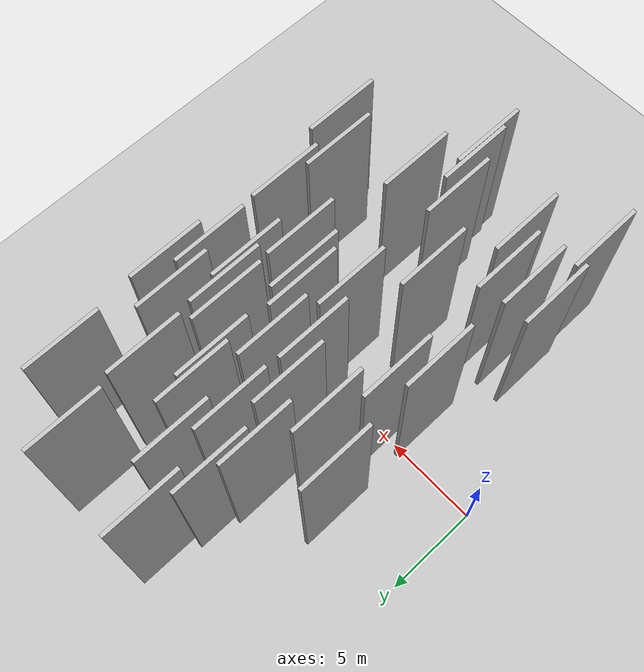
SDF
<?xml version="1.0" encoding="utf-8"?>

<sdf version="1.6">

   <world name="default">

      <gui fullscreen="0">

         <camera name="user_camera">

            <pose>-15 0 4.57585 0 0 0</pose>

            <view_controller>orbit</view_controller>

         </camera>

      </gui>

      <scene>

         <sky>

           <clouds>

             <speed>12</speed>

           </clouds>

         </sky>

         <ambient>0.4 0.4 0.4 1</ambient>

         <background>0.7 0.7 0.7 1</background>

         <shadows>1</shadows>

      </scene>

      <gravity>0 0 -9.8066</gravity>

      <magnetic_field>6e-06 2.3e-05 -4.2e-05</magnetic_field>

      <physics default="0" name="default_physics" type="ode">

         <ode>

            <solver>

               <type>quick</type>

               <iters>10</iters>

               <sor>1.0</sor>

               <use_dynamic_moi_rescaling>0</use_dynamic_moi_rescaling>

            </solver>

            <constraints>

               <cfm>0</cfm>

               <erp>0.2</erp>

               <contact_max_correcting_vel>100</contact_max_correcting_vel>

               <contact_surface_layer>0.001</contact_surface_layer>

            </constraints>

         </ode>

         <max_step_size>0.004</max_step_size>

         <real_time_factor>1</real_time_factor>

         <real_time_update_rate>250</real_time_update_rate>

      </physics>

      <light name="sun" type="directional">

         <cast_shadows>1</cast_shadows>

         <pose>0 0 10 0 0 0</pose>

         <diffuse>0.8 0.8 0.8 1</diffuse>

         <specular>0.2 0.2 0.2 1</specular>

         <attenuation>

            <range>1000</range>

            <constant>0.9</constant>

            <linear>0.01</linear>

            <quadratic>0.001</quadratic>

         </attenuation>

         <direction>-0.5 0.1 -0.9</direction>

      </light>

      <include>

         <name>ground_plane_1</name>

         <uri>model://HANNAS_ground_plane</uri>

         <pose>0 0 0  0 0 0</pose>

      </include>

      <include>

         <name>ground_plane_2</name>

         <uri>model://HANNAS_ground_plane</uri>

         <pose>100 0 0  0 0 0</pose>

      </include>

      <model name="HANNAS_wall_1">

         <static>1</static>

         <pose frame="">3.3832 -10.8072 0.0 0.000000 0.000000 1.570796</pose>

         <link name="link">

            <pose frame="">0 0 5.00 0 0 0</pose>

            <collision name="collision">

               <geometry>

                  <box>

                     <size>4.00 0.2 10.00</size>

                  </box>

               </geometry>

               <max_contacts>10</max_contacts>

               <surface>

                  <contact>

                     <ode/>

                  </contact>

                  <bounce/>

                  <friction>

                     <torsional>

                        <ode/>

                     </torsional>

                     <ode/>

                  </friction>

               </surface>

            </collision>

            <visual name="visual">

               <cast_shadows>0</cast_shadows>

               <geometry>

                  <box>

                     <size>4.00 0.2 10.00</size>

                  </box>

               </geometry>

               <material>

                  <script>

                     <uri>model://HANNAS_wall/materials/scripts</uri>

                     <uri>model://HANNAS_wall/materials/textures</uri>

                     <name>vrc/HANNAS_wall</name>

                  </script>

               </material>

            </visual>

            <self_collide>0</self_collide>

            <enable_wind>0</enable_wind>

            <kinematic>0</kinematic>

         </link>

      </model>

      <model name="HANNAS_wall_2">

         <static>1</static>

         <pose frame="">6.3397 -8.9448 0.0 0.000000 0.000000 1.570796</pose>

         <link name="link">

            <pose frame="">0 0 5.00 0 0 0</pose>

            <collision name="collision">

               <geometry>

                  <box>

                     <size>4.00 0.2 10.00</size>

                  </box>

               </geometry>

               <max_contacts>10</max_contacts>

               <surface>

                  <contact>

                     <ode/>

                  </contact>

                  <bounce/>

                  <friction>

                     <torsional>

                        <ode/>

                     </torsional>

                     <ode/>

                  </friction>

               </surface>

            </collision>

            <visual name="visual">

               <cast_shadows>0</cast_shadows>

               <geometry>

                  <box>

                     <size>4.00 0.2 10.00</size>

                  </box>

               </geometry>

               <material>

                  <script>

                     <uri>model://HANNAS_wall/materials/scripts</uri>

                     <uri>model://HANNAS_wall/materials/textures</uri>

                     <name>vrc/HANNAS_wall</name>

                  </script>

               </material>

            </visual>

            <self_collide>0</self_collide>

            <enable_wind>0</enable_wind>

            <kinematic>0</kinematic>

         </link>

      </model>

      <model name="HANNAS_wall_3">

         <static>1</static>

         <pose frame="">11.8246 -0.5661 0.0 0.000000 0.000000 1.570796</pose>

         <link name="link">

            <pose frame="">0 0 5.00 0 0 0</pose>

            <collision name="collision">

               <geometry>

                  <box>

                     <size>4.00 0.2 10.00</size>

                  </box>

               </geometry>

               <max_contacts>10</max_contacts>

               <surface>

                  <contact>

                     <ode/>

                  </contact>

                  <bounce/>

                  <friction>

                     <torsional>

                        <ode/>

                     </torsional>

                     <ode/>

                  </friction>

               </surface>

            </collision>

            <visual name="visual">

               <cast_shadows>0</cast_shadows>

               <geometry>

                  <box>

                     <size>4.00 0.2 10.00</size>

                  </box>

               </geometry>

               <material>

                  <script>

                     <uri>model://HANNAS_wall/materials/scripts</uri>

                     <uri>model://HANNAS_wall/materials/textures</uri>

                     <name>vrc/HANNAS_wall</name>

                  </script>

               </material>

            </visual>

            <self_collide>0</self_collide>

            <enable_wind>0</enable_wind>

            <kinematic>0</kinematic>

         </link>

      </model>

      <model name="HANNAS_wall_4">

         <static>1</static>

         <pose frame="">4.5400 -1.5496 0.0 0.000000 0.000000 1.570796</pose>

         <link name="link">

            <pose frame="">0 0 5.00 0 0 0</pose>

            <collision name="collision">

               <geometry>

                  <box>

                     <size>4.00 0.2 10.00</size>

                  </box>

               </geometry>

               <max_contacts>10</max_contacts>

               <surface>

                  <contact>

                     <ode/>

                  </contact>

                  <bounce/>

                  <friction>

                     <torsional>

                        <ode/>

                     </torsional>

                     <ode/>

                  </friction>

               </surface>

            </collision>

            <visual name="visual">

               <cast_shadows>0</cast_shadows>

               <geometry>

                  <box>

                     <size>4.00 0.2 10.00</size>

                  </box>

               </geometry>

               <material>

                  <script>

                     <uri>model://HANNAS_wall/materials/scripts</uri>

                     <uri>model://HANNAS_wall/materials/textures</uri>

                     <name>vrc/HANNAS_wall</name>

                  </script>

               </material>

            </visual>

            <self_collide>0</self_collide>

            <enable_wind>0</enable_wind>

            <kinematic>0</kinematic>

         </link>

      </model>

      <model name="HANNAS_wall_5">

         <static>1</static>

         <pose frame="">15.6263 1.5800 0.0 0.000000 0.000000 1.570796</pose>

         <link name="link">

            <pose frame="">0 0 5.00 0 0 0</pose>

            <collision name="collision">

               <geometry>

                  <box>

                     <size>4.00 0.2 10.00</size>

                  </box>

               </geometry>

               <max_contacts>10</max_contacts>

               <surface>

                  <contact>

                     <ode/>

                  </contact>

                  <bounce/>

                  <friction>

                     <torsional>

                        <ode/>

                     </torsional>

                     <ode/>

                  </friction>

               </surface>

            </collision>

            <visual name="visual">

               <cast_shadows>0</cast_shadows>

               <geometry>

                  <box>

                     <size>4.00 0.2 10.00</size>

                  </box>

               </geometry>

               <material>

                  <script>

                     <uri>model://HANNAS_wall/materials/scripts</uri>

                     <uri>model://HANNAS_wall/materials/textures</uri>

                     <name>vrc/HANNAS_wall</name>

                  </script>

               </material>

            </visual>

            <self_collide>0</self_collide>

            <enable_wind>0</enable_wind>

            <kinematic>0</kinematic>

         </link>

      </model>

      <model name="HANNAS_wall_6">

         <static>1</static>

         <pose frame="">13.2290 11.5430 0.0 0.000000 0.000000 1.570796</pose>

         <link name="link">

            <pose frame="">0 0 5.00 0 0 0</pose>

            <collision name="collision">

               <geometry>

                  <box>

                     <size>4.00 0.2 10.00</size>

                  </box>

               </geometry>

               <max_contacts>10</max_contacts>

               <surface>

                  <contact>

                     <ode/>

                  </contact>

                  <bounce/>

                  <friction>

                     <torsional>

                        <ode/>

                     </torsional>

                     <ode/>

                  </friction>

               </surface>

            </collision>

            <visual name="visual">

               <cast_shadows>0</cast_shadows>

               <geometry>

                  <box>

                     <size>4.00 0.2 10.00</size>

                  </box>

               </geometry>

               <material>

                  <script>

                     <uri>model://HANNAS_wall/materials/scripts</uri>

                     <uri>model://HANNAS_wall/materials/textures</uri>

                     <name>vrc/HANNAS_wall</name>

                  </script>

               </material>

            </visual>

            <self_collide>0</self_collide>

            <enable_wind>0</enable_wind>

            <kinematic>0</kinematic>

         </link>

      </model>

      <model name="HANNAS_wall_7">

         <static>1</static>

         <pose frame="">11.2349 0.0759 0.0 0.000000 0.000000 1.570796</pose>

         <link name="link">

            <pose frame="">0 0 5.00 0 0 0</pose>

            <collision name="collision">

               <geometry>

                  <box>

                     <size>4.00 0.2 10.00</size>

                  </box>

               </geometry>

               <max_contacts>10</max_contacts>

               <surface>

                  <contact>

                     <ode/>

                  </contact>

                  <bounce/>

                  <friction>

                     <torsional>

                        <ode/>

                     </torsional>

                     <ode/>

                  </friction>

               </surface>

            </collision>

            <visual name="visual">

               <cast_shadows>0</cast_shadows>

               <geometry>

                  <box>

                     <size>4.00 0.2 10.00</size>

                  </box>

               </geometry>

               <material>

                  <script>

                     <uri>model://HANNAS_wall/materials/scripts</uri>

                     <uri>model://HANNAS_wall/materials/textures</uri>

                     <name>vrc/HANNAS_wall</name>

                  </script>

               </material>

            </visual>

            <self_collide>0</self_collide>

            <enable_wind>0</enable_wind>

            <kinematic>0</kinematic>

         </link>

      </model>

      <model name="HANNAS_wall_8">

         <static>1</static>

         <pose frame="">10.4423 2.5509 0.0 0.000000 0.000000 1.570796</pose>

         <link name="link">

            <pose frame="">0 0 5.00 0 0 0</pose>

            <collision name="collision">

               <geometry>

                  <box>

                     <size>4.00 0.2 10.00</size>

                  </box>

               </geometry>

               <max_contacts>10</max_contacts>

               <surface>

                  <contact>

                     <ode/>

                  </contact>

                  <bounce/>

                  <friction>

                     <torsional>

                        <ode/>

                     </torsional>

                     <ode/>

                  </friction>

               </surface>

            </collision>

            <visual name="visual">

               <cast_shadows>0</cast_shadows>

               <geometry>

                  <box>

                     <size>4.00 0.2 10.00</size>

                  </box>

               </geometry>

               <material>

                  <script>

                     <uri>model://HANNAS_wall/materials/scripts</uri>

                     <uri>model://HANNAS_wall/materials/textures</uri>

                     <name>vrc/HANNAS_wall</name>

                  </script>

               </material>

            </visual>

            <self_collide>0</self_collide>

            <enable_wind>0</enable_wind>

            <kinematic>0</kinematic>

         </link>

      </model>

      <model name="HANNAS_wall_9">

         <static>1</static>

         <pose frame="">13.7004 2.4150 0.0 0.000000 0.000000 1.570796</pose>

         <link name="link">

            <pose frame="">0 0 5.00 0 0 0</pose>

            <collision name="collision">

               <geometry>

                  <box>

                     <size>4.00 0.2 10.00</size>

                  </box>

               </geometry>

               <max_contacts>10</max_contacts>

               <surface>

                  <contact>

                     <ode/>

                  </contact>

                  <bounce/>

                  <friction>

                     <torsional>

                        <ode/>

                     </torsional>

                     <ode/>

                  </friction>

               </surface>

            </collision>

            <visual name="visual">

               <cast_shadows>0</cast_shadows>

               <geometry>

                  <box>

                     <size>4.00 0.2 10.00</size>

                  </box>

               </geometry>

               <material>

                  <script>

                     <uri>model://HANNAS_wall/materials/scripts</uri>

                     <uri>model://HANNAS_wall/materials/textures</uri>

                     <name>vrc/HANNAS_wall</name>

                  </script>

               </material>

            </visual>

            <self_collide>0</self_collide>

            <enable_wind>0</enable_wind>

            <kinematic>0</kinematic>

         </link>

      </model>

      <model name="HANNAS_wall_10">

         <static>1</static>

         <pose frame="">13.1162 -1.5548 0.0 0.000000 0.000000 1.570796</pose>

         <link name="link">

            <pose frame="">0 0 5.00 0 0 0</pose>

            <collision name="collision">

               <geometry>

                  <box>

                     <size>4.00 0.2 10.00</size>

                  </box>

               </geometry>

               <max_contacts>10</max_contacts>

               <surface>

                  <contact>

                     <ode/>

                  </contact>

                  <bounce/>

                  <friction>

                     <torsional>

                        <ode/>

                     </torsional>

                     <ode/>

                  </friction>

               </surface>

            </collision>

            <visual name="visual">

               <cast_shadows>0</cast_shadows>

               <geometry>

                  <box>

                     <size>4.00 0.2 10.00</size>

                  </box>

               </geometry>

               <material>

                  <script>

                     <uri>model://HANNAS_wall/materials/scripts</uri>

                     <uri>model://HANNAS_wall/materials/textures</uri>

                     <name>vrc/HANNAS_wall</name>

                  </script>

               </material>

            </visual>

            <self_collide>0</self_collide>

            <enable_wind>0</enable_wind>

            <kinematic>0</kinematic>

         </link>

      </model>

      <model name="HANNAS_wall_11">

         <static>1</static>

         <pose frame="">12.0513 -7.7593 0.0 0.000000 0.000000 1.570796</pose>

         <link name="link">

            <pose frame="">0 0 5.00 0 0 0</pose>

            <collision name="collision">

               <geometry>

                  <box>

                     <size>4.00 0.2 10.00</size>

                  </box>

               </geometry>

               <max_contacts>10</max_contacts>

               <surface>

                  <contact>

                     <ode/>

                  </contact>

                  <bounce/>

                  <friction>

                     <torsional>

                        <ode/>

                     </torsional>

                     <ode/>

                  </friction>

               </surface>

            </collision>

            <visual name="visual">

               <cast_shadows>0</cast_shadows>

               <geometry>

                  <box>

                     <size>4.00 0.2 10.00</size>

                  </box>

               </geometry>

               <material>

                  <script>

                     <uri>model://HANNAS_wall/materials/scripts</uri>

                     <uri>model://HANNAS_wall/materials/textures</uri>

                     <name>vrc/HANNAS_wall</name>

                  </script>

               </material>

            </visual>

            <self_collide>0</self_collide>

            <enable_wind>0</enable_wind>

            <kinematic>0</kinematic>

         </link>

      </model>

      <model name="HANNAS_wall_12">

         <static>1</static>

         <pose frame="">15.2707 -5.9594 0.0 0.000000 0.000000 1.570796</pose>

         <link name="link">

            <pose frame="">0 0 5.00 0 0 0</pose>

            <collision name="collision">

               <geometry>

                  <box>

                     <size>4.00 0.2 10.00</size>

                  </box>

               </geometry>

               <max_contacts>10</max_contacts>

               <surface>

                  <contact>

                     <ode/>

                  </contact>

                  <bounce/>

                  <friction>

                     <torsional>

                        <ode/>

                     </torsional>

                     <ode/>

                  </friction>

               </surface>

            </collision>

            <visual name="visual">

               <cast_shadows>0</cast_shadows>

               <geometry>

                  <box>

                     <size>4.00 0.2 10.00</size>

                  </box>

               </geometry>

               <material>

                  <script>

                     <uri>model://HANNAS_wall/materials/scripts</uri>

                     <uri>model://HANNAS_wall/materials/textures</uri>

                     <name>vrc/HANNAS_wall</name>

                  </script>

               </material>

            </visual>

            <self_collide>0</self_collide>

            <enable_wind>0</enable_wind>

            <kinematic>0</kinematic>

         </link>

      </model>

      <model name="HANNAS_wall_13">

         <static>1</static>

         <pose frame="">7.9908 -4.7197 0.0 0.000000 0.000000 1.570796</pose>

         <link name="link">

            <pose frame="">0 0 5.00 0 0 0</pose>

            <collision name="collision">

               <geometry>

                  <box>

                     <size>4.00 0.2 10.00</size>

                  </box>

               </geometry>

               <max_contacts>10</max_contacts>

               <surface>

                  <contact>

                     <ode/>

                  </contact>

                  <bounce/>

                  <friction>

                     <torsional>

                        <ode/>

                     </torsional>

                     <ode/>

                  </friction>

               </surface>

            </collision>

            <visual name="visual">

               <cast_shadows>0</cast_shadows>

               <geometry>

                  <box>

                     <size>4.00 0.2 10.00</size>

                  </box>

               </geometry>

               <material>

                  <script>

                     <uri>model://HANNAS_wall/materials/scripts</uri>

                     <uri>model://HANNAS_wall/materials/textures</uri>

                     <name>vrc/HANNAS_wall</name>

                  </script>

               </material>

            </visual>

            <self_collide>0</self_collide>

            <enable_wind>0</enable_wind>

            <kinematic>0</kinematic>

         </link>

      </model>

      <model name="HANNAS_wall_14">

         <static>1</static>

         <pose frame="">16.5486 -7.3850 0.0 0.000000 0.000000 1.570796</pose>

         <link name="link">

            <pose frame="">0 0 5.00 0 0 0</pose>

            <collision name="collision">

               <geometry>

                  <box>

                     <size>4.00 0.2 10.00</size>

                  </box>

               </geometry>

               <max_contacts>10</max_contacts>

               <surface>

                  <contact>

                     <ode/>

                  </contact>

                  <bounce/>

                  <friction>

                     <torsional>

                        <ode/>

                     </torsional>

                     <ode/>

                  </friction>

               </surface>

            </collision>

            <visual name="visual">

               <cast_shadows>0</cast_shadows>

               <geometry>

                  <box>

                     <size>4.00 0.2 10.00</size>

                  </box>

               </geometry>

               <material>

                  <script>

                     <uri>model://HANNAS_wall/materials/scripts</uri>

                     <uri>model://HANNAS_wall/materials/textures</uri>

                     <name>vrc/HANNAS_wall</name>

                  </script>

               </material>

            </visual>

            <self_collide>0</self_collide>

            <enable_wind>0</enable_wind>

            <kinematic>0</kinematic>

         </link>

      </model>

      <model name="HANNAS_wall_15">

         <static>1</static>

         <pose frame="">4.3701 4.6510 0.0 0.000000 0.000000 1.570796</pose>

         <link name="link">

            <pose frame="">0 0 5.00 0 0 0</pose>

            <collision name="collision">

               <geometry>

                  <box>

                     <size>4.00 0.2 10.00</size>

                  </box>

               </geometry>

               <max_contacts>10</max_contacts>

               <surface>

                  <contact>

                     <ode/>

                  </contact>

                  <bounce/>

                  <friction>

                     <torsional>

                        <ode/>

                     </torsional>

                     <ode/>

                  </friction>

               </surface>

            </collision>

            <visual name="visual">

               <cast_shadows>0</cast_shadows>

               <geometry>

                  <box>

                     <size>4.00 0.2 10.00</size>

                  </box>

               </geometry>

               <material>

                  <script>

                     <uri>model://HANNAS_wall/materials/scripts</uri>

                     <uri>model://HANNAS_wall/materials/textures</uri>

                     <name>vrc/HANNAS_wall</name>

                  </script>

               </material>

            </visual>

            <self_collide>0</self_collide>

            <enable_wind>0</enable_wind>

            <kinematic>0</kinematic>

         </link>

      </model>

      <model name="HANNAS_wall_16">

         <static>1</static>

         <pose frame="">4.3443 -7.2147 0.0 0.000000 0.000000 1.570796</pose>

         <link name="link">

            <pose frame="">0 0 5.00 0 0 0</pose>

            <collision name="collision">

               <geometry>

                  <box>

                     <size>4.00 0.2 10.00</size>

                  </box>

               </geometry>

               <max_contacts>10</max_contacts>

               <surface>

                  <contact>

                     <ode/>

                  </contact>

                  <bounce/>

                  <friction>

                     <torsional>

                        <ode/>

                     </torsional>

                     <ode/>

                  </friction>

               </surface>

            </collision>

            <visual name="visual">

               <cast_shadows>0</cast_shadows>

               <geometry>

                  <box>

                     <size>4.00 0.2 10.00</size>

                  </box>

               </geometry>

               <material>

                  <script>

                     <uri>model://HANNAS_wall/materials/scripts</uri>

                     <uri>model://HANNAS_wall/materials/textures</uri>

                     <name>vrc/HANNAS_wall</name>

                  </script>

               </material>

            </visual>

            <self_collide>0</self_collide>

            <enable_wind>0</enable_wind>

            <kinematic>0</kinematic>

         </link>

      </model>

      <model name="HANNAS_wall_17">

         <static>1</static>

         <pose frame="">11.4988 5.0331 0.0 0.000000 0.000000 1.570796</pose>

         <link name="link">

            <pose frame="">0 0 5.00 0 0 0</pose>

            <collision name="collision">

               <geometry>

                  <box>

                     <size>4.00 0.2 10.00</size>

                  </box>

               </geometry>

               <max_contacts>10</max_contacts>

               <surface>

                  <contact>

                     <ode/>

                  </contact>

                  <bounce/>

                  <friction>

                     <torsional>

                        <ode/>

                     </torsional>

                     <ode/>

                  </friction>

               </surface>

            </collision>

            <visual name="visual">

               <cast_shadows>0</cast_shadows>

               <geometry>

                  <box>

                     <size>4.00 0.2 10.00</size>

                  </box>

               </geometry>

               <material>

                  <script>

                     <uri>model://HANNAS_wall/materials/scripts</uri>

                     <uri>model://HANNAS_wall/materials/textures</uri>

                     <name>vrc/HANNAS_wall</name>

                  </script>

               </material>

            </visual>

            <self_collide>0</self_collide>

            <enable_wind>0</enable_wind>

            <kinematic>0</kinematic>

         </link>

      </model>

      <model name="HANNAS_wall_18">

         <static>1</static>

         <pose frame="">15.0743 4.2230 0.0 0.000000 0.000000 1.570796</pose>

         <link name="link">

            <pose frame="">0 0 5.00 0 0 0</pose>

            <collision name="collision">

               <geometry>

                  <box>

                     <size>4.00 0.2 10.00</size>

                  </box>

               </geometry>

               <max_contacts>10</max_contacts>

               <surface>

                  <contact>

                     <ode/>

                  </contact>

                  <bounce/>

                  <friction>

                     <torsional>

                        <ode/>

                     </torsional>

                     <ode/>

                  </friction>

               </surface>

            </collision>

            <visual name="visual">

               <cast_shadows>0</cast_shadows>

               <geometry>

                  <box>

                     <size>4.00 0.2 10.00</size>

                  </box>

               </geometry>

               <material>

                  <script>

                     <uri>model://HANNAS_wall/materials/scripts</uri>

                     <uri>model://HANNAS_wall/materials/textures</uri>

                     <name>vrc/HANNAS_wall</name>

                  </script>

               </material>

            </visual>

            <self_collide>0</self_collide>

            <enable_wind>0</enable_wind>

            <kinematic>0</kinematic>

         </link>

      </model>

      <model name="HANNAS_wall_19">

         <static>1</static>

         <pose frame="">13.9900 0.8796 0.0 0.000000 0.000000 1.570796</pose>

         <link name="link">

            <pose frame="">0 0 5.00 0 0 0</pose>

            <collision name="collision">

               <geometry>

                  <box>

                     <size>4.00 0.2 10.00</size>

                  </box>

               </geometry>

               <max_contacts>10</max_contacts>

               <surface>

                  <contact>

                     <ode/>

                  </contact>

                  <bounce/>

                  <friction>

                     <torsional>

                        <ode/>

                     </torsional>

                     <ode/>

                  </friction>

               </surface>

            </collision>

            <visual name="visual">

               <cast_shadows>0</cast_shadows>

               <geometry>

                  <box>

                     <size>4.00 0.2 10.00</size>

                  </box>

               </geometry>

               <material>

                  <script>

                     <uri>model://HANNAS_wall/materials/scripts</uri>

                     <uri>model://HANNAS_wall/materials/textures</uri>

                     <name>vrc/HANNAS_wall</name>

                  </script>

               </material>

            </visual>

            <self_collide>0</self_collide>

            <enable_wind>0</enable_wind>

            <kinematic>0</kinematic>

         </link>

      </model>

      <model name="HANNAS_wall_20">

         <static>1</static>

         <pose frame="">3.0623 -7.2333 0.0 0.000000 0.000000 1.570796</pose>

         <link name="link">

            <pose frame="">0 0 5.00 0 0 0</pose>

            <collision name="collision">

               <geometry>

                  <box>

                     <size>4.00 0.2 10.00</size>

                  </box>

               </geometry>

               <max_contacts>10</max_contacts>

               <surface>

                  <contact>

                     <ode/>

                  </contact>

                  <bounce/>

                  <friction>

                     <torsional>

                        <ode/>

                     </torsional>

                     <ode/>

                  </friction>

               </surface>

            </collision>

            <visual name="visual">

               <cast_shadows>0</cast_shadows>

               <geometry>

                  <box>

                     <size>4.00 0.2 10.00</size>

                  </box>

               </geometry>

               <material>

                  <script>

                     <uri>model://HANNAS_wall/materials/scripts</uri>

                     <uri>model://HANNAS_wall/materials/textures</uri>

                     <name>vrc/HANNAS_wall</name>

                  </script>

               </material>

            </visual>

            <self_collide>0</self_collide>

            <enable_wind>0</enable_wind>

            <kinematic>0</kinematic>

         </link>

      </model>

      <model name="HANNAS_wall_21">

         <static>1</static>

         <pose frame="">9.1421 1.3990 0.0 0.000000 0.000000 1.570796</pose>

         <link name="link">

            <pose frame="">0 0 5.00 0 0 0</pose>

            <collision name="collision">

               <geometry>

                  <box>

                     <size>4.00 0.2 10.00</size>

                  </box>

               </geometry>

               <max_contacts>10</max_contacts>

               <surface>

                  <contact>

                     <ode/>

                  </contact>

                  <bounce/>

                  <friction>

                     <torsional>

                        <ode/>

                     </torsional>

                     <ode/>

                  </friction>

               </surface>

            </collision>

            <visual name="visual">

               <cast_shadows>0</cast_shadows>

               <geometry>

                  <box>

                     <size>4.00 0.2 10.00</size>

                  </box>

               </geometry>

               <material>

                  <script>

                     <uri>model://HANNAS_wall/materials/scripts</uri>

                     <uri>model://HANNAS_wall/materials/textures</uri>

                     <name>vrc/HANNAS_wall</name>

                  </script>

               </material>

            </visual>

            <self_collide>0</self_collide>

            <enable_wind>0</enable_wind>

            <kinematic>0</kinematic>

         </link>

      </model>

      <model name="HANNAS_wall_22">

         <static>1</static>

         <pose frame="">8.3918 3.5246 0.0 0.000000 0.000000 1.570796</pose>

         <link name="link">

            <pose frame="">0 0 5.00 0 0 0</pose>

            <collision name="collision">

               <geometry>

                  <box>

                     <size>4.00 0.2 10.00</size>

                  </box>

               </geometry>

               <max_contacts>10</max_contacts>

               <surface>

                  <contact>

                     <ode/>

                  </contact>

                  <bounce/>

                  <friction>

                     <torsional>

                        <ode/>

                     </torsional>

                     <ode/>

                  </friction>

               </surface>

            </collision>

            <visual name="visual">

               <cast_shadows>0</cast_shadows>

               <geometry>

                  <box>

                     <size>4.00 0.2 10.00</size>

                  </box>

               </geometry>

               <material>

                  <script>

                     <uri>model://HANNAS_wall/materials/scripts</uri>

                     <uri>model://HANNAS_wall/materials/textures</uri>

                     <name>vrc/HANNAS_wall</name>

                  </script>

               </material>

            </visual>

            <self_collide>0</self_collide>

            <enable_wind>0</enable_wind>

            <kinematic>0</kinematic>

         </link>

      </model>

      <model name="HANNAS_wall_23">

         <static>1</static>

         <pose frame="">11.1994 6.3919 0.0 0.000000 0.000000 1.570796</pose>

         <link name="link">

            <pose frame="">0 0 5.00 0 0 0</pose>

            <collision name="collision">

               <geometry>

                  <box>

                     <size>4.00 0.2 10.00</size>

                  </box>

               </geometry>

               <max_contacts>10</max_contacts>

               <surface>

                  <contact>

                     <ode/>

                  </contact>

                  <bounce/>

                  <friction>

                     <torsional>

                        <ode/>

                     </torsional>

                     <ode/>

                  </friction>

               </surface>

            </collision>

            <visual name="visual">

               <cast_shadows>0</cast_shadows>

               <geometry>

                  <box>

                     <size>4.00 0.2 10.00</size>

                  </box>

               </geometry>

               <material>

                  <script>

                     <uri>model://HANNAS_wall/materials/scripts</uri>

                     <uri>model://HANNAS_wall/materials/textures</uri>

                     <name>vrc/HANNAS_wall</name>

                  </script>

               </material>

            </visual>

            <self_collide>0</self_collide>

            <enable_wind>0</enable_wind>

            <kinematic>0</kinematic>

         </link>

      </model>

      <model name="HANNAS_wall_24">

         <static>1</static>

         <pose frame="">5.4449 0.0748 0.0 0.000000 0.000000 1.570796</pose>

         <link name="link">

            <pose frame="">0 0 5.00 0 0 0</pose>

            <collision name="collision">

               <geometry>

                  <box>

                     <size>4.00 0.2 10.00</size>

                  </box>

               </geometry>

               <max_contacts>10</max_contacts>

               <surface>

                  <contact>

                     <ode/>

                  </contact>

                  <bounce/>

                  <friction>

                     <torsional>

                        <ode/>

                     </torsional>

                     <ode/>

                  </friction>

               </surface>

            </collision>

            <visual name="visual">

               <cast_shadows>0</cast_shadows>

               <geometry>

                  <box>

                     <size>4.00 0.2 10.00</size>

                  </box>

               </geometry>

               <material>

                  <script>

                     <uri>model://HANNAS_wall/materials/scripts</uri>

                     <uri>model://HANNAS_wall/materials/textures</uri>

                     <name>vrc/HANNAS_wall</name>

                  </script>

               </material>

            </visual>

            <self_collide>0</self_collide>

            <enable_wind>0</enable_wind>

            <kinematic>0</kinematic>

         </link>

      </model>

      <model name="HANNAS_wall_25">

         <static>1</static>

         <pose frame="">8.3574 11.4528 0.0 0.000000 0.000000 1.570796</pose>

         <link name="link">

            <pose frame="">0 0 5.00 0 0 0</pose>

            <collision name="collision">

               <geometry>

                  <box>

                     <size>4.00 0.2 10.00</size>

                  </box>

               </geometry>

               <max_contacts>10</max_contacts>

               <surface>

                  <contact>

                     <ode/>

                  </contact>

                  <bounce/>

                  <friction>

                     <torsional>

                        <ode/>

                     </torsional>

                     <ode/>

                  </friction>

               </surface>

            </collision>

            <visual name="visual">

               <cast_shadows>0</cast_shadows>

               <geometry>

                  <box>

                     <size>4.00 0.2 10.00</size>

                  </box>

               </geometry>

               <material>

                  <script>

                     <uri>model://HANNAS_wall/materials/scripts</uri>

                     <uri>model://HANNAS_wall/materials/textures</uri>

                     <name>vrc/HANNAS_wall</name>

                  </script>

               </material>

            </visual>

            <self_collide>0</self_collide>

            <enable_wind>0</enable_wind>

            <kinematic>0</kinematic>

         </link>

      </model>

      <model name="HANNAS_wall_26">

         <static>1</static>

         <pose frame="">16.1052 9.4257 0.0 0.000000 0.000000 1.570796</pose>

         <link name="link">

            <pose frame="">0 0 5.00 0 0 0</pose>

            <collision name="collision">

               <geometry>

                  <box>

                     <size>4.00 0.2 10.00</size>

                  </box>

               </geometry>

               <max_contacts>10</max_contacts>

               <surface>

                  <contact>

                     <ode/>

                  </contact>

                  <bounce/>

                  <friction>

                     <torsional>

                        <ode/>

                     </torsional>

                     <ode/>

                  </friction>

               </surface>

            </collision>

            <visual name="visual">

               <cast_shadows>0</cast_shadows>

               <geometry>

                  <box>

                     <size>4.00 0.2 10.00</size>

                  </box>

               </geometry>

               <material>

                  <script>

                     <uri>model://HANNAS_wall/materials/scripts</uri>

                     <uri>model://HANNAS_wall/materials/textures</uri>

                     <name>vrc/HANNAS_wall</name>

                  </script>

               </material>

            </visual>

            <self_collide>0</self_collide>

            <enable_wind>0</enable_wind>

            <kinematic>0</kinematic>

         </link>

      </model>

      <model name="HANNAS_wall_27">

         <static>1</static>

         <pose frame="">9.2094 6.0366 0.0 0.000000 0.000000 1.570796</pose>

         <link name="link">

            <pose frame="">0 0 5.00 0 0 0</pose>

            <collision name="collision">

               <geometry>

                  <box>

                     <size>4.00 0.2 10.00</size>

                  </box>

               </geometry>

               <max_contacts>10</max_contacts>

               <surface>

                  <contact>

                     <ode/>

                  </contact>

                  <bounce/>

                  <friction>

                     <torsional>

                        <ode/>

                     </torsional>

                     <ode/>

                  </friction>

               </surface>

            </collision>

            <visual name="visual">

               <cast_shadows>0</cast_shadows>

               <geometry>

                  <box>

                     <size>4.00 0.2 10.00</size>

                  </box>

               </geometry>

               <material>

                  <script>

                     <uri>model://HANNAS_wall/materials/scripts</uri>

                     <uri>model://HANNAS_wall/materials/textures</uri>

                     <name>vrc/HANNAS_wall</name>

                  </script>

               </material>

            </visual>

            <self_collide>0</self_collide>

            <enable_wind>0</enable_wind>

            <kinematic>0</kinematic>

         </link>

      </model>

      <model name="HANNAS_wall_28">

         <static>1</static>

         <pose frame="">15.7316 -3.0404 0.0 0.000000 0.000000 1.570796</pose>

         <link name="link">

            <pose frame="">0 0 5.00 0 0 0</pose>

            <collision name="collision">

               <geometry>

                  <box>

                     <size>4.00 0.2 10.00</size>

                  </box>

               </geometry>

               <max_contacts>10</max_contacts>

               <surface>

                  <contact>

                     <ode/>

                  </contact>

                  <bounce/>

                  <friction>

                     <torsional>

                        <ode/>

                     </torsional>

                     <ode/>

                  </friction>

               </surface>

            </collision>

            <visual name="visual">

               <cast_shadows>0</cast_shadows>

               <geometry>

                  <box>

                     <size>4.00 0.2 10.00</size>

                  </box>

               </geometry>

               <material>

                  <script>

                     <uri>model://HANNAS_wall/materials/scripts</uri>

                     <uri>model://HANNAS_wall/materials/textures</uri>

                     <name>vrc/HANNAS_wall</name>

                  </script>

               </material>

            </visual>

            <self_collide>0</self_collide>

            <enable_wind>0</enable_wind>

            <kinematic>0</kinematic>

         </link>

      </model>

      <model name="HANNAS_wall_29">

         <static>1</static>

         <pose frame="">7.7758 8.3857 0.0 0.000000 0.000000 1.570796</pose>

         <link name="link">

            <pose frame="">0 0 5.00 0 0 0</pose>

            <collision name="collision">

               <geometry>

                  <box>

                     <size>4.00 0.2 10.00</size>

                  </box>

               </geometry>

               <max_contacts>10</max_contacts>

               <surface>

                  <contact>

                     <ode/>

                  </contact>

                  <bounce/>

                  <friction>

                     <torsional>

                        <ode/>

                     </torsional>

                     <ode/>

                  </friction>

               </surface>

            </collision>

            <visual name="visual">

               <cast_shadows>0</cast_shadows>

               <geometry>

                  <box>

                     <size>4.00 0.2 10.00</size>

                  </box>

               </geometry>

               <material>

                  <script>

                     <uri>model://HANNAS_wall/materials/scripts</uri>

                     <uri>model://HANNAS_wall/materials/textures</uri>

                     <name>vrc/HANNAS_wall</name>

                  </script>

               </material>

            </visual>

            <self_collide>0</self_collide>

            <enable_wind>0</enable_wind>

            <kinematic>0</kinematic>

         </link>

      </model>

      <model name="HANNAS_wall_30">

         <static>1</static>

         <pose frame="">5.6072 -6.9901 0.0 0.000000 0.000000 1.570796</pose>

         <link name="link">

            <pose frame="">0 0 5.00 0 0 0</pose>

            <collision name="collision">

               <geometry>

                  <box>

                     <size>4.00 0.2 10.00</size>

                  </box>

               </geometry>

               <max_contacts>10</max_contacts>

               <surface>

                  <contact>

                     <ode/>

                  </contact>

                  <bounce/>

                  <friction>

                     <torsional>

                        <ode/>

                     </torsional>

                     <ode/>

                  </friction>

               </surface>

            </collision>

            <visual name="visual">

               <cast_shadows>0</cast_shadows>

               <geometry>

                  <box>

                     <size>4.00 0.2 10.00</size>

                  </box>

               </geometry>

               <material>

                  <script>

                     <uri>model://HANNAS_wall/materials/scripts</uri>

                     <uri>model://HANNAS_wall/materials/textures</uri>

                     <name>vrc/HANNAS_wall</name>

                  </script>

               </material>

            </visual>

            <self_collide>0</self_collide>

            <enable_wind>0</enable_wind>

            <kinematic>0</kinematic>

         </link>

      </model>

      <model name="HANNAS_wall_31">

         <static>1</static>

         <pose frame="">10.4260 -9.9772 0.0 0.000000 0.000000 1.570796</pose>

         <link name="link">

            <pose frame="">0 0 5.00 0 0 0</pose>

            <collision name="collision">

               <geometry>

                  <box>

                     <size>4.00 0.2 10.00</size>

                  </box>

               </geometry>

               <max_contacts>10</max_contacts>

               <surface>

                  <contact>

                     <ode/>

                  </contact>

                  <bounce/>

                  <friction>

                     <torsional>

                        <ode/>

                     </torsional>

                     <ode/>

                  </friction>

               </surface>

            </collision>

            <visual name="visual">

               <cast_shadows>0</cast_shadows>

               <geometry>

                  <box>

                     <size>4.00 0.2 10.00</size>

                  </box>

               </geometry>

               <material>

                  <script>

                     <uri>model://HANNAS_wall/materials/scripts</uri>

                     <uri>model://HANNAS_wall/materials/textures</uri>

                     <name>vrc/HANNAS_wall</name>

                  </script>

               </material>

            </visual>

            <self_collide>0</self_collide>

            <enable_wind>0</enable_wind>

            <kinematic>0</kinematic>

         </link>

      </model>

      <model name="HANNAS_wall_32">

         <static>1</static>

         <pose frame="">6.3708 3.2293 0.0 0.000000 0.000000 1.570796</pose>

         <link name="link">

            <pose frame="">0 0 5.00 0 0 0</pose>

            <collision name="collision">

               <geometry>

                  <box>

                     <size>4.00 0.2 10.00</size>

                  </box>

               </geometry>

               <max_contacts>10</max_contacts>

               <surface>

                  <contact>

                     <ode/>

                  </contact>

                  <bounce/>

                  <friction>

                     <torsional>

                        <ode/>

                     </torsional>

                     <ode/>

                  </friction>

               </surface>

            </collision>

            <visual name="visual">

               <cast_shadows>0</cast_shadows>

               <geometry>

                  <box>

                     <size>4.00 0.2 10.00</size>

                  </box>

               </geometry>

               <material>

                  <script>

                     <uri>model://HANNAS_wall/materials/scripts</uri>

                     <uri>model://HANNAS_wall/materials/textures</uri>

                     <name>vrc/HANNAS_wall</name>

                  </script>

               </material>

            </visual>

            <self_collide>0</self_collide>

            <enable_wind>0</enable_wind>

            <kinematic>0</kinematic>

         </link>

      </model>

      <model name="HANNAS_wall_33">

         <static>1</static>

         <pose frame="">7.3891 6.2914 0.0 0.000000 0.000000 1.570796</pose>

         <link name="link">

            <pose frame="">0 0 5.00 0 0 0</pose>

            <collision name="collision">

               <geometry>

                  <box>

                     <size>4.00 0.2 10.00</size>

                  </box>

               </geometry>

               <max_contacts>10</max_contacts>

               <surface>

                  <contact>

                     <ode/>

                  </contact>

                  <bounce/>

                  <friction>

                     <torsional>

                        <ode/>

                     </torsional>

                     <ode/>

                  </friction>

               </surface>

            </collision>

            <visual name="visual">

               <cast_shadows>0</cast_shadows>

               <geometry>

                  <box>

                     <size>4.00 0.2 10.00</size>

                  </box>

               </geometry>

               <material>

                  <script>

                     <uri>model://HANNAS_wall/materials/scripts</uri>

                     <uri>model://HANNAS_wall/materials/textures</uri>

                     <name>vrc/HANNAS_wall</name>

                  </script>

               </material>

            </visual>

            <self_collide>0</self_collide>

            <enable_wind>0</enable_wind>

            <kinematic>0</kinematic>

         </link>

      </model>

      <model name="HANNAS_wall_34">

         <static>1</static>

         <pose frame="">16.3634 3.5012 0.0 0.000000 0.000000 1.570796</pose>

         <link name="link">

            <pose frame="">0 0 5.00 0 0 0</pose>

            <collision name="collision">

               <geometry>

                  <box>

                     <size>4.00 0.2 10.00</size>

                  </box>

               </geometry>

               <max_contacts>10</max_contacts>

               <surface>

                  <contact>

                     <ode/>

                  </contact>

                  <bounce/>

                  <friction>

                     <torsional>

                        <ode/>

                     </torsional>

                     <ode/>

                  </friction>

               </surface>

            </collision>

            <visual name="visual">

               <cast_shadows>0</cast_shadows>

               <geometry>

                  <box>

                     <size>4.00 0.2 10.00</size>

                  </box>

               </geometry>

               <material>

                  <script>

                     <uri>model://HANNAS_wall/materials/scripts</uri>

                     <uri>model://HANNAS_wall/materials/textures</uri>

                     <name>vrc/HANNAS_wall</name>

                  </script>

               </material>

            </visual>

            <self_collide>0</self_collide>

            <enable_wind>0</enable_wind>

            <kinematic>0</kinematic>

         </link>

      </model>

      <model name="HANNAS_wall_35">

         <static>1</static>

         <pose frame="">9.7945 -1.4836 0.0 0.000000 0.000000 1.570796</pose>

         <link name="link">

            <pose frame="">0 0 5.00 0 0 0</pose>

            <collision name="collision">

               <geometry>

                  <box>

                     <size>4.00 0.2 10.00</size>

                  </box>

               </geometry>

               <max_contacts>10</max_contacts>

               <surface>

                  <contact>

                     <ode/>

                  </contact>

                  <bounce/>

                  <friction>

                     <torsional>

                        <ode/>

                     </torsional>

                     <ode/>

                  </friction>

               </surface>

            </collision>

            <visual name="visual">

               <cast_shadows>0</cast_shadows>

               <geometry>

                  <box>

                     <size>4.00 0.2 10.00</size>

                  </box>

               </geometry>

               <material>

                  <script>

                     <uri>model://HANNAS_wall/materials/scripts</uri>

                     <uri>model://HANNAS_wall/materials/textures</uri>

                     <name>vrc/HANNAS_wall</name>

                  </script>

               </material>

            </visual>

            <self_collide>0</self_collide>

            <enable_wind>0</enable_wind>

            <kinematic>0</kinematic>

         </link>

      </model>

      <model name="HANNAS_wall_36">

         <static>1</static>

         <pose frame="">9.8337 8.6672 0.0 0.000000 0.000000 1.570796</pose>

         <link name="link">

            <pose frame="">0 0 5.00 0 0 0</pose>

            <collision name="collision">

               <geometry>

                  <box>

                     <size>4.00 0.2 10.00</size>

                  </box>

               </geometry>

               <max_contacts>10</max_contacts>

               <surface>

                  <contact>

                     <ode/>

                  </contact>

                  <bounce/>

                  <friction>

                     <torsional>

                        <ode/>

                     </torsional>

                     <ode/>

                  </friction>

               </surface>

            </collision>

            <visual name="visual">

               <cast_shadows>0</cast_shadows>

               <geometry>

                  <box>

                     <size>4.00 0.2 10.00</size>

                  </box>

               </geometry>

               <material>

                  <script>

                     <uri>model://HANNAS_wall/materials/scripts</uri>

                     <uri>model://HANNAS_wall/materials/textures</uri>

                     <name>vrc/HANNAS_wall</name>

                  </script>

               </material>

            </visual>

            <self_collide>0</self_collide>

            <enable_wind>0</enable_wind>

            <kinematic>0</kinematic>

         </link>

      </model>

      <model name="HANNAS_wall_37">

         <static>1</static>

         <pose frame="">13.0304 2.8880 0.0 0.000000 0.000000 1.570796</pose>

         <link name="link">

            <pose frame="">0 0 5.00 0 0 0</pose>

            <collision name="collision">

               <geometry>

                  <box>

                     <size>4.00 0.2 10.00</size>

                  </box>

               </geometry>

               <max_contacts>10</max_contacts>

               <surface>

                  <contact>

                     <ode/>

                  </contact>

                  <bounce/>

                  <friction>

                     <torsional>

                        <ode/>

                     </torsional>

                     <ode/>

                  </friction>

               </surface>

            </collision>

            <visual name="visual">

               <cast_shadows>0</cast_shadows>

               <geometry>

                  <box>

                     <size>4.00 0.2 10.00</size>

                  </box>

               </geometry>

               <material>

                  <script>

                     <uri>model://HANNAS_wall/materials/scripts</uri>

                     <uri>model://HANNAS_wall/materials/textures</uri>

                     <name>vrc/HANNAS_wall</name>

                  </script>

               </material>

            </visual>

            <self_collide>0</self_collide>

            <enable_wind>0</enable_wind>

            <kinematic>0</kinematic>

         </link>

      </model>

      <model name="HANNAS_wall_38">

         <static>1</static>

         <pose frame="">10.6363 -11.0877 0.0 0.000000 0.000000 1.570796</pose>

         <link name="link">

            <pose frame="">0 0 5.00 0 0 0</pose>

            <collision name="collision">

               <geometry>

                  <box>

                     <size>4.00 0.2 10.00</size>

                  </box>

               </geometry>

               <max_contacts>10</max_contacts>

               <surface>

                  <contact>

                     <ode/>

                  </contact>

                  <bounce/>

                  <friction>

                     <torsional>

                        <ode/>

                     </torsional>

                     <ode/>

                  </friction>

               </surface>

            </collision>

            <visual name="visual">

               <cast_shadows>0</cast_shadows>

               <geometry>

                  <box>

                     <size>4.00 0.2 10.00</size>

                  </box>

               </geometry>

               <material>

                  <script>

                     <uri>model://HANNAS_wall/materials/scripts</uri>

                     <uri>model://HANNAS_wall/materials/textures</uri>

                     <name>vrc/HANNAS_wall</name>

                  </script>

               </material>

            </visual>

            <self_collide>0</self_collide>

            <enable_wind>0</enable_wind>

            <kinematic>0</kinematic>

         </link>

      </model>

      <model name="HANNAS_wall_39">

         <static>1</static>

         <pose frame="">9.7470 -8.1474 0.0 0.000000 0.000000 1.570796</pose>

         <link name="link">

            <pose frame="">0 0 5.00 0 0 0</pose>

            <collision name="collision">

               <geometry>

                  <box>

                     <size>4.00 0.2 10.00</size>

                  </box>

               </geometry>

               <max_contacts>10</max_contacts>

               <surface>

                  <contact>

                     <ode/>

                  </contact>

                  <bounce/>

                  <friction>

                     <torsional>

                        <ode/>

                     </torsional>

                     <ode/>

                  </friction>

               </surface>

            </collision>

            <visual name="visual">

               <cast_shadows>0</cast_shadows>

               <geometry>

                  <box>

                     <size>4.00 0.2 10.00</size>

                  </box>

               </geometry>

               <material>

                  <script>

                     <uri>model://HANNAS_wall/materials/scripts</uri>

                     <uri>model://HANNAS_wall/materials/textures</uri>

                     <name>vrc/HANNAS_wall</name>

                  </script>

               </material>

            </visual>

            <self_collide>0</self_collide>

            <enable_wind>0</enable_wind>

            <kinematic>0</kinematic>

         </link>

      </model>

      <model name="HANNAS_wall_40">

         <static>1</static>

         <pose frame="">13.5613 7.0439 0.0 0.000000 0.000000 1.570796</pose>

         <link name="link">

            <pose frame="">0 0 5.00 0 0 0</pose>

            <collision name="collision">

               <geometry>

                  <box>

                     <size>4.00 0.2 10.00</size>

                  </box>

               </geometry>

               <max_contacts>10</max_contacts>

               <surface>

                  <contact>

                     <ode/>

                  </contact>

                  <bounce/>

                  <friction>

                     <torsional>

                        <ode/>

                     </torsional>

                     <ode/>

                  </friction>

               </surface>

            </collision>

            <visual name="visual">

               <cast_shadows>0</cast_shadows>

               <geometry>

                  <box>

                     <size>4.00 0.2 10.00</size>

                  </box>

               </geometry>

               <material>

                  <script>

                     <uri>model://HANNAS_wall/materials/scripts</uri>

                     <uri>model://HANNAS_wall/materials/textures</uri>

                     <name>vrc/HANNAS_wall</name>

                  </script>

               </material>

            </visual>

            <self_collide>0</self_collide>

            <enable_wind>0</enable_wind>

            <kinematic>0</kinematic>

         </link>

      </model>

   </world>

</sdf>
